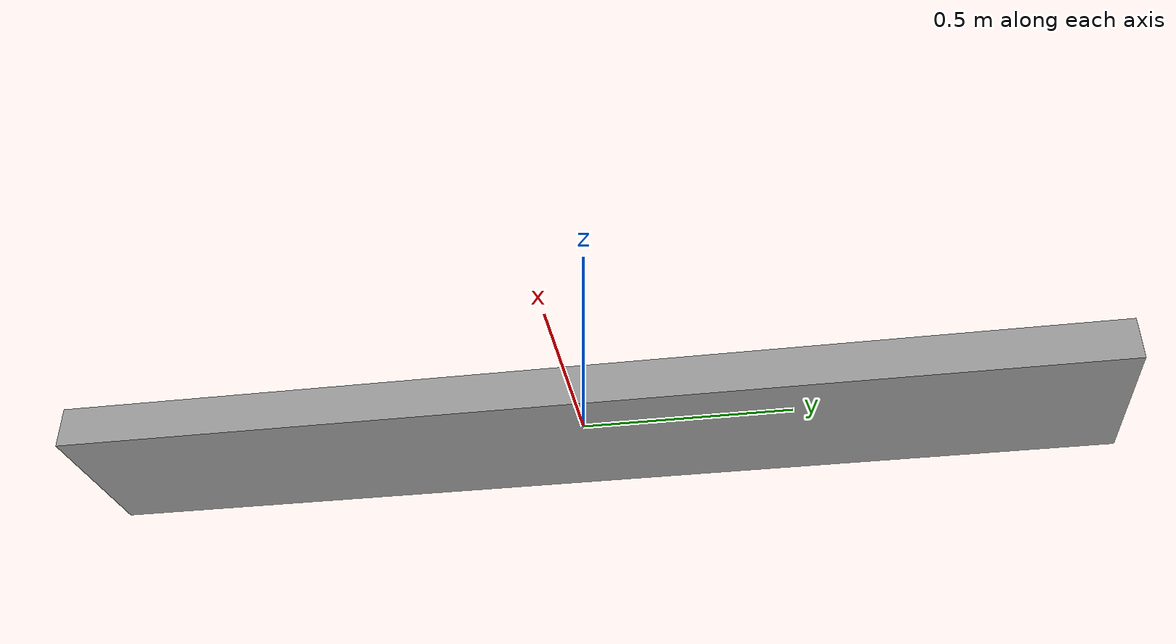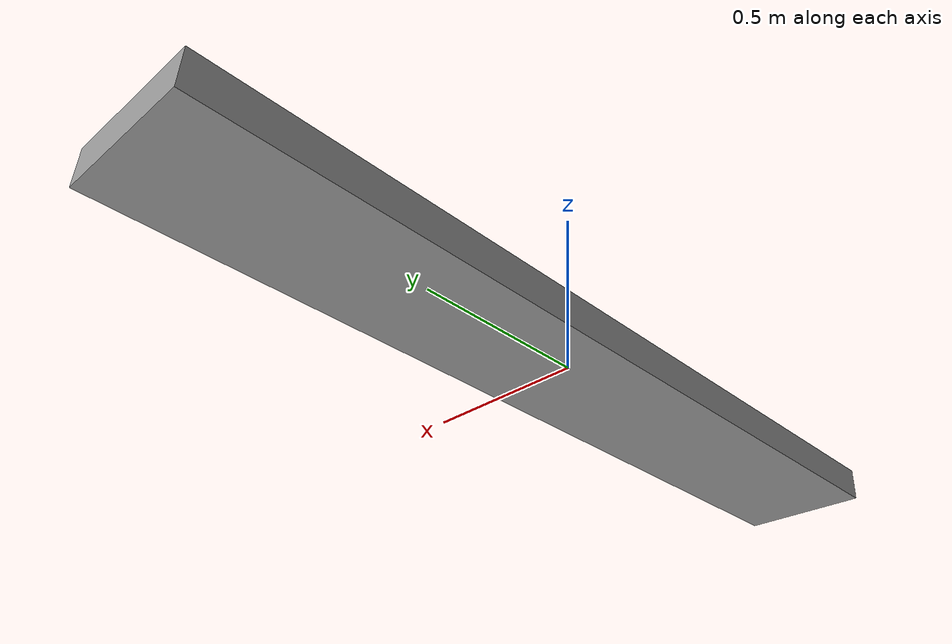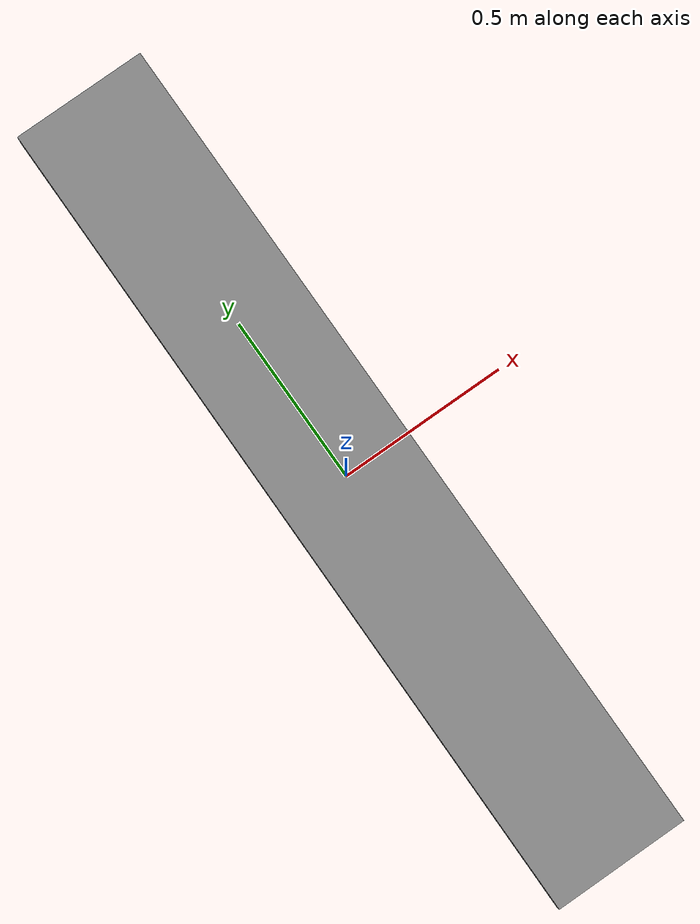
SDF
<?xml version='1.0'?>
<sdf version='1.7'>
  <model name='underbin_bench'>
    <link name='link_0'>
      <inertial>
        <mass>1</mass>
        <inertia>
          <ixx>0.166667</ixx>
          <ixy>0</ixy>
          <ixz>0</ixz>
          <iyy>0.166667</iyy>
          <iyz>0</iyz>
          <izz>0.166667</izz>
        </inertia>
        <pose>0 0 0 0 -0 0</pose>
      </inertial>
      <pose>0 0 0 0 0 0</pose>
      <gravity>1</gravity>
      <self_collide>0</self_collide>
      <kinematic>0</kinematic>
      <enable_wind>0</enable_wind>
      <visual name='visual'>
        <pose>0 0 0 0 -0 0</pose>
        <geometry>
          <box>
            <!-- Lunghezza estesa da 1.5 a 2.5 -->
            <size>0.4 2.5 0.1</size>
          </box>
        </geometry>
        <material>
          <lighting>1</lighting>
          <script>
            <uri>file://media/materials/scripts/gazebo.material</uri>
            <name>Gazebo/Grey</name>
          </script>
          <shader type='pixel'>
            <normal_map>__default__</normal_map>
          </shader>
          <ambient>0.3 0.3 0.3 1</ambient>
          <diffuse>0.7 0.7 0.7 1</diffuse>
          <specular>0.01 0.01 0.01 1</specular>
          <emissive>0 0 0 1</emissive>
        </material>
        <transparency>0</transparency>
        <cast_shadows>1</cast_shadows>
      </visual>
      <collision name='collision'>
        <laser_retro>0</laser_retro>
        <max_contacts>10</max_contacts>
        <pose>0 0 0 0 -0 0</pose>
        <geometry>
          <box>
            <!-- Lunghezza estesa da 1.5 a 2.5 -->
            <size>0.4 2.5 0.1</size>
          </box>
        </geometry>
        <surface>
          <friction>
            <ode>
              <mu>1</mu>
              <mu2>1</mu2>
              <fdir1>0 0 0</fdir1>
              <slip1>0</slip1>
              <slip2>0</slip2>
            </ode>
          </friction>
        </surface>
      </collision>
    </link>
    <static>1</static> <!-- CONSIGLIO: Se la bench è fissa a terra, metti static a 1 così non cade/si muove -->
    <allow_auto_disable>1</allow_auto_disable>
  </model>
</sdf>
